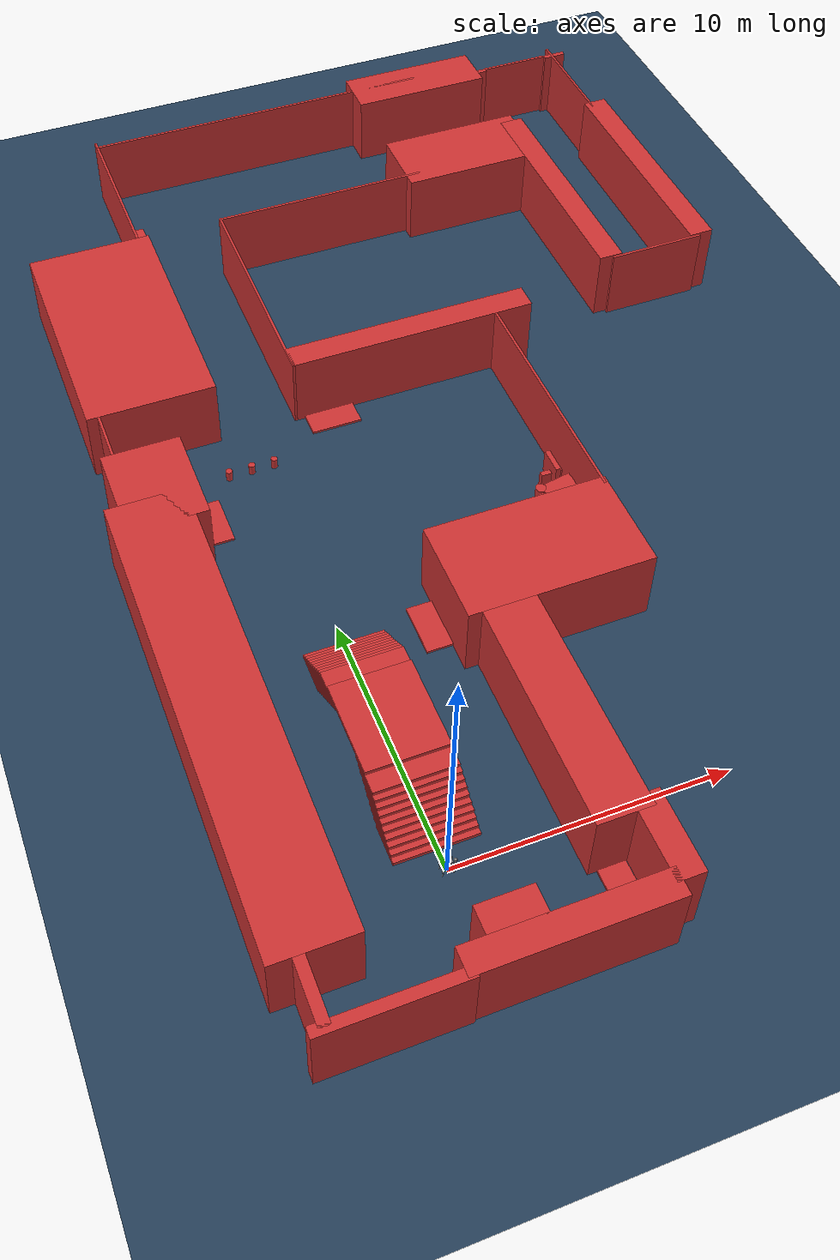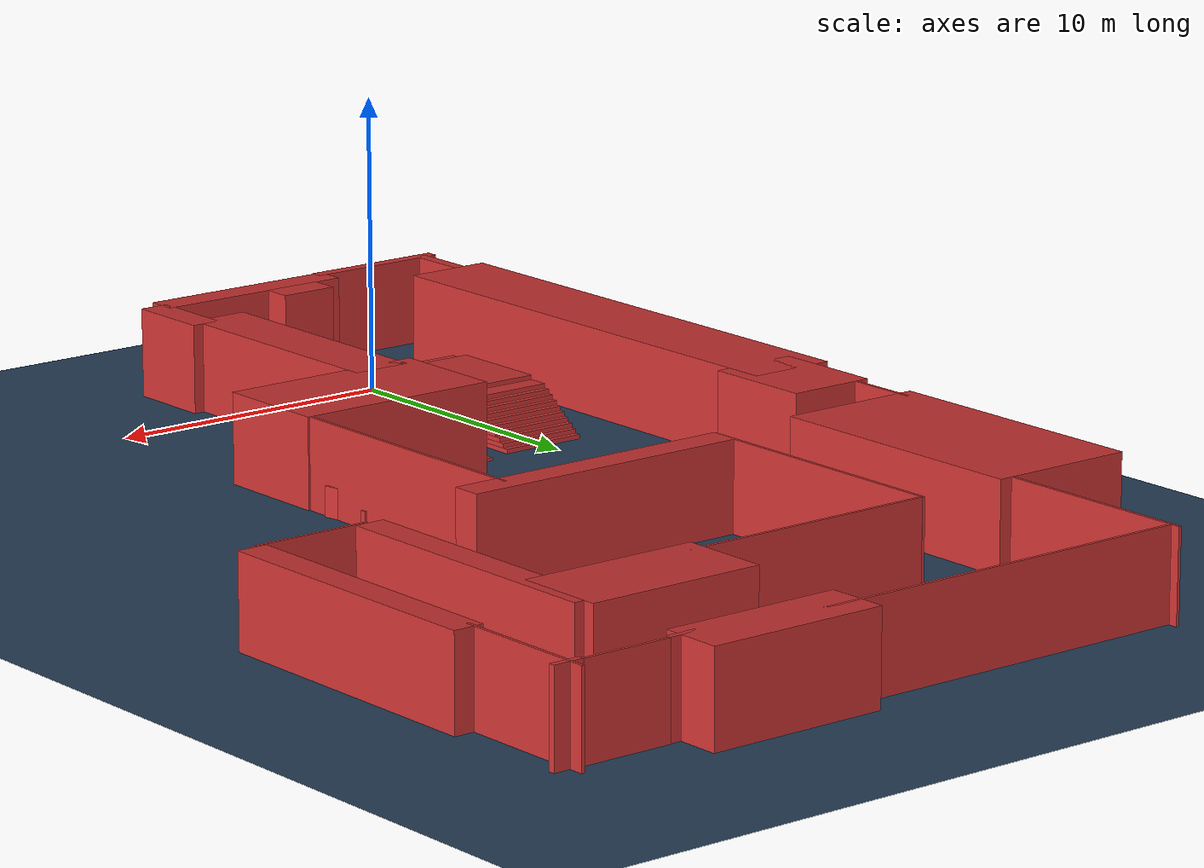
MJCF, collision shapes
<mujoco model="go2 scene">
  <include file="go2.xml" />

  <statistic center="0 0 0.1" extent="0.8" />

  <visual>
    <headlight diffuse="0.6 0.6 0.6" ambient="0.3 0.3 0.3" specular="0 0 0" />
    <rgba haze="0.15 0.25 0.35 1" />
    <global azimuth="-130" elevation="-20" />
    <map znear="0.01" zfar="100"/>
  </visual>

  <asset>
    <texture type="skybox" builtin="gradient" rgb1="0.3 0.5 0.7" rgb2="0 0 0" width="512" height="3072" />
    <texture type="2d" name="groundplane" builtin="checker" mark="edge" rgb1="0.2 0.3 0.4" rgb2="0.1 0.2 0.3" markrgb="0.8 0.8 0.8" width="300" height="300" />
    <material name="groundplane" texture="groundplane" texuniform="true" texrepeat="5 5" reflectance="0.2" />
    <material name="platform" rgba="0.75294 0.75294 0.75294 1" specular="0.3" shininess="0.5" />
  </asset>
  <worldbody>
    <light pos="0 0 1.5" dir="0 0 -1" directional="true" />
    <geom name="floor" size="0 0 0.01" type="plane" material="groundplane" />
    <geom name="box_OBS1" pos="0.0 1.5 0.05" type="box" size="1.5 0.75 0.075" quat="1.0 0.0 0.0 0.0"  rgba="0.8 0.2 0.2 1"/>
    <geom name="box_OBS2" pos="0.0 1.7 0.2" type="box" size="1.5 0.75 0.075" quat="1.0 0.0 0.0 0.0"  rgba="0.8 0.2 0.2 1"/>
    <geom name="box_OBS3" pos="0.0 1.9 0.35" type="box" size="1.5 0.75 0.075" quat="1.0 0.0 0.0 0.0"  rgba="0.8 0.2 0.2 1"/>
    <geom name="box_OBS4" pos="0.0 2.1 0.5" type="box" size="1.5 0.75 0.075" quat="1.0 0.0 0.0 0.0"  rgba="0.8 0.2 0.2 1"/>
    <geom name="box_OBS5" pos="0.0 2.3 0.65" type="box" size="1.5 0.75 0.075" quat="1.0 0.0 0.0 0.0"  rgba="0.8 0.2 0.2 1"/>
    <geom name="box_OBS6" pos="0.0 2.5 0.8" type="box" size="1.5 0.75 0.075" quat="1.0 0.0 0.0 0.0"  rgba="0.8 0.2 0.2 1"/>
    <geom name="box_OBS7" pos="0.0 2.7 0.95" type="box" size="1.5 0.75 0.075" quat="1.0 0.0 0.0 0.0"  rgba="0.8 0.2 0.2 1"/>
    <geom name="box_OBS8" pos="0.0 2.9 1.1" type="box" size="1.5 0.75 0.075" quat="1.0 0.0 0.0 0.0"  rgba="0.8 0.2 0.2 1"/>
    <geom name="box_OBS9" pos="0.0 3.1 1.25" type="box" size="1.5 0.75 0.075" quat="1.0 0.0 0.0 0.0"  rgba="0.8 0.2 0.2 1"/>
    <geom name="box_OBS10" pos="0.0 3.3 1.4" type="box" size="1.5 0.75 0.075" quat="1.0 0.0 0.0 0.0"  rgba="0.8 0.2 0.2 1"/>
    <geom name="box2_OBS1" pos="0.0 8.5 0.05" type="box" size="1.5 0.75 0.075" quat="1.0 0.0 0.0 0.0"  rgba="0.8 0.2 0.2 1"/>
    <geom name="box2_OBS2" pos="0.0 8.3 0.2" type="box" size="1.5 0.75 0.075" quat="1.0 0.0 0.0 0.0"  rgba="0.8 0.2 0.2 1"/>
    <geom name="box2_OBS3" pos="0.0 8.1 0.35" type="box" size="1.5 0.75 0.075" quat="1.0 0.0 0.0 0.0"  rgba="0.8 0.2 0.2 1"/>
    <geom name="box2_OBS4" pos="0.0 7.9 0.5" type="box" size="1.5 0.75 0.075" quat="1.0 0.0 0.0 0.0"  rgba="0.8 0.2 0.2 1"/>
    <geom name="box2_OBS5" pos="0.0 7.7 0.65" type="box" size="1.5 0.75 0.075" quat="1.0 0.0 0.0 0.0"  rgba="0.8 0.2 0.2 1"/>
    <geom name="box2_OBS6" pos="0.0 7.5 0.8" type="box" size="1.5 0.75 0.075" quat="1.0 0.0 0.0 0.0"  rgba="0.8 0.2 0.2 1"/>
    <geom name="box2_OBS7" pos="0.0 7.3 0.95" type="box" size="1.5 0.75 0.075" quat="1.0 0.0 0.0 0.0"  rgba="0.8 0.2 0.2 1"/>
    <geom name="box2_OBS8" pos="0.0 7.1 1.1" type="box" size="1.5 0.75 0.075" quat="1.0 0.0 0.0 0.0"  rgba="0.8 0.2 0.2 1"/>
    <geom name="box2_OBS9" pos="0.0 6.9 1.25" type="box" size="1.5 0.75 0.075" quat="1.0 0.0 0.0 0.0" rgba="0.8 0.2 0.2 1" />
    <geom name="box2_OBS10" pos="0.0 6.7 1.4" type="box" size="1.5 0.75 0.075" quat="1.0 0.0 0.0 0.0"  rgba="0.8 0.2 0.2 1"/>
    <geom name="box2_OBS11" pos="0.0 5.0 1.55" type="box" size="1.5 1.75 0.075" quat="1.0 0.0 0.0 0.0"  rgba="0.8 0.2 0.2 1"/>
    <geom name="Box0" type="box" size="2.5 0.2 1.5" pos="-3.6 -4.58 1.5" euler="0.0 0.0 0.0" rgba="0.8 0.2 0.2 1"/>
    <geom name="Box1" type="box" size="3.5 0.5 1.5" pos="2.09 -4.21 1.5" euler="0.0 0.0 0.0" rgba="0.8 0.2 0.2 1"/>
    <geom name="Box2" type="box" size="1.5 0.5 1.5" pos="5.89 -2.71 1.5" euler="0.0 0.0 -1.570796" rgba="0.8 0.2 0.2 1"/>
    <geom name="Box3" type="box" size="4.5 1.0 1.5" pos="5.02 2.79 1.5" euler="0.0 0.0 -1.570796" rgba="0.8 0.2 0.2 1"/>
    <geom name="Box4" type="box" size="2.0 3.5 1.5" pos="7.02 8.79 1.5" euler="0.0 0.0 -1.570796" rgba="0.8 0.2 0.2 1"/>
    <geom name="Box5" type="box" size="5.0 0.05 1.5" pos="10.41 15.49 1.5" euler="0.0 0.0 -1.570796" rgba="0.8 0.2 0.2 1"/>
    <geom name="Box6" type="box" size="5.0 0.5 1.5" pos="6.96 20.6 1.5" euler="0.0 0.0 -3.141593" rgba="0.8 0.2 0.2 1"/>
    <geom name="Box7" type="box" size="1.5 0.2 1.5" pos="-5.6 -3.08 1.5" euler="0.0 0.0 1.570796" rgba="0.8 0.2 0.2 1"/>
    <geom name="Box8" type="box" size="9.0 1.5 1.5" pos="-5.1 6.61 1.5" euler="0.0 0.0 1.570796" rgba="0.8 0.2 0.2 1"/>
    <geom name="Box9" type="box" size="1.9 1.5 1.5" pos="-4.6 16.19 1.5" euler="0.0 0.0 1.570796" rgba="0.8 0.2 0.2 1"/>
    <geom name="Box10" type="box" size="4.75 2.5 1.5" pos="-3.6 24.85 1.5" euler="0.0 0.0 1.570796" rgba="0.8 0.2 0.2 1"/>
    <geom name="Box11" type="box" size="3.5 0.05 1.5" pos="-1.58 33.09 1.5" euler="0.0 0.0 1.570796" rgba="0.8 0.2 0.2 1"/>
    <geom name="Box12" type="box" size="4.75 0.05 1.5" pos="1.99 24.85 1.5" euler="0.0 0.0 1.570796" rgba="0.8 0.2 0.2 1"/>
    <geom name="Box13" type="box" size="7.5 0.05 1.5" pos="5.91 36.24 1.5" euler="0.0 0.0 3.141593" rgba="0.8 0.2 0.2 1"/>
    <geom name="Box14" type="box" size="3.0 1.0 1.5" pos="13.37 36.1 1.5" euler="0.0 0.0 3.141593" rgba="0.8 0.2 0.2 1"/>
    <geom name="Box15" type="box" size="3.0 1.5 1.5" pos="13.37 30.46 1.5" euler="0.0 0.0 3.141593" rgba="0.8 0.2 0.2 1"/>
    <geom name="Box16" type="box" size="4.5 0.05 1.5" pos="6.48 29.54 1.5" euler="0.0 0.0 3.141593" rgba="0.8 0.2 0.2 1"/>
    <geom name="Box17" type="box" size="1.5 0.05 1.5" pos="18.26 35.71 1.5" euler="0.0 0.0 3.141593" rgba="0.8 0.2 0.2 1"/>
    <geom name="Box18" type="box" size="0.5 0.1 1.5" pos="16.26 35.63 1.5" euler="0.0 0.0 3.141593" rgba="0.8 0.2 0.2 1"/>
    <geom name="Box19" type="box" size="0.5 0.1 1.5" pos="20.26 35.63 1.5" euler="0.0 0.0 3.141593" rgba="0.8 0.2 0.2 1"/>
    <geom name="Box20" type="box" size="2.5 0.05 1.5" pos="20.16 33.71 1.5" euler="0.0 0.0 -1.570796" rgba="0.8 0.2 0.2 1"/>
    <geom name="Box21" type="box" size="5.0 0.5 1.5" pos="20.38 26.58 1.5" euler="0.0 0.0 -1.570796" rgba="0.8 0.2 0.2 1"/>
    <geom name="Box22" type="box" size="5.0 0.5 1.5" pos="16.22 26.58 1.5" euler="0.0 0.0 -1.570796" rgba="0.8 0.2 0.2 1"/>
    <geom name="Box23" type="box" size="2.0 0.05 1.5" pos="18.26 21.48 1.5" euler="0.0 0.0 -3.141593" rgba="0.8 0.2 0.2 1"/>
    <geom name="Box24" type="box" size="1.0 0.5 1.5" pos="0.55 -3.24 1.5" euler="0.0 0.0 0.0" rgba="0.8 0.2 0.2 1"/>
    <geom name="Box25" type="box" size="1.0 0.5 0.05" pos="4.83 -2.74 0.09" euler="0.0 0.0 -1.570796" rgba="0.8 0.2 0.2 1"/>
    <geom name="Box26" type="box" size="1.0 0.5 0.05" pos="-2.63 16.08 0.1" euler="0.0 0.0 -1.570796" rgba="0.8 0.2 0.2 1"/>
    <geom name="Box27" type="box" size="1.0 0.5 0.05" pos="3.35 19.62 0.1" euler="0.0 0.0 0.0" rgba="0.8 0.2 0.2 1"/>
    <geom name="Box28" type="box" size="1.0 0.5 0.05" pos="-1.05 32.59 0.1" euler="0.0 0.0 -1.570796" rgba="0.8 0.2 0.2 1"/>
    <geom name="Box29" type="box" size="0.1 0.5 0.5" pos="6.82 11.09 0.5" euler="0.0 0.0 -1.570796" rgba="0.8 0.2 0.2 1"/>
    <geom name="Box30" type="box" size="0.5 0.65 0.5" pos="8.24 11.3 0.5" euler="0.0 0.0 -1.570796" rgba="0.8 0.2 0.2 1"/>
    <geom name="Box31" type="box" size="0.65 0.65 0.5" pos="9.8 12.2 0.5" euler="0.0 0.0 1.745329" rgba="0.8 0.2 0.2 1"/>
    <geom name="Box32" type="box" size="0.1 0.5 0.5" pos="10.02 13.59 0.1" euler="-1.570796 1.570796 3.141593" rgba="0.8 0.2 0.2 1"/>
    <geom name="Box33" type="box" size="0.1 0.5 0.5" pos="10.02 13.69 0.6" euler="-1.570796 0.0 3.141593" rgba="0.8 0.2 0.2 1"/>
    <geom name="Cylinder34"  type="cylinder" size="0.2 0.5" pos="8.95 12.2 0.5" rgba="0.8 0.2 0.2 1"/>
    <geom name="Cylinder35"  type="cylinder" size="0.2 0.5" pos="9.05 12.65 0.5" rgba="0.8 0.2 0.2 1"/>
    <geom name="Box36" type="box" size="1.5 0.05 1.5" pos="-5.63 19.05 1.5" euler="0.0 0.0 1.570796" rgba="0.8 0.2 0.2 1"/>
    <geom name="Cylinder37"  type="cylinder" size="0.125 0.22" pos="0.41 18.09 0.22" rgba="0.8 0.2 0.2 1"/>
    <geom name="Cylinder38"  type="cylinder" size="0.125 0.22" pos="-0.49 18.09 0.22" rgba="0.8 0.2 0.2 1"/>
    <geom name="Cylinder39"  type="cylinder" size="0.125 0.22" pos="-1.39 18.09 0.22" rgba="0.8 0.2 0.2 1"/>
    <geom name="Box40" type="box" size="1.0 0.5 0.05" pos="3.04 8.82 0.1" euler="0.0 0.0 -1.570796" rgba="0.8 0.2 0.2 1"/>
  </worldbody>
</mujoco>

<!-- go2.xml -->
<mujoco model="go2">
  <compiler angle="radian" meshdir="assets" autolimits="true" />

  <option cone="elliptic" impratio="100" />

  <default>
    <default class="go2">
      <geom friction="0.4" margin="0.001" condim="1"/>
      <joint axis="0 1 0" damping="0.1" armature="0.01" frictionloss="0.2"/>
      <motor ctrlrange="-23.7 23.7"/>
      <default class="abduction">
        <joint axis="1 0 0" range="-1.0472 1.0472"/>
      </default>
      <default class="hip">
        <default class="front_hip">
          <joint range="-1.5708 3.4907"/>
        </default>
        <default class="back_hip">
          <joint range="-0.5236 4.5379"/>
        </default>
      </default>
      <default class="knee">
        <joint range="-2.7227 -0.83776"/>
        <motor ctrlrange="-45.43 45.43"/>
      </default>
      <default class="visual">
        <geom type="mesh" contype="0" conaffinity="0" group="2"/>
      </default>
      <default class="collision">
        <geom group="3"/>
        <default class="foot">
          <geom size="0.022" pos="-0.002 0 -0.213" priority="1" condim="6"
            friction="0.4 0.02 0.01"/>
        </default>
      </default>
    </default>
  </default>

  <asset>
    <material name="metal" rgba=".9 .95 .95 1" />
    <material name="black" rgba="0 0 0 1" />
    <material name="white" rgba="1 1 1 1" />
    <material name="gray" rgba="0.671705 0.692426 0.774270 1" />

    <mesh file="base_0.obj" />
    <mesh file="base_1.obj" />
    <mesh file="base_2.obj" />
    <mesh file="base_3.obj" />
    <mesh file="base_4.obj" />
    <mesh file="hip_0.obj" />
    <mesh file="hip_1.obj" />
    <mesh file="thigh_0.obj" />
    <mesh file="thigh_1.obj" />
    <mesh file="thigh_mirror_0.obj" />
    <mesh file="thigh_mirror_1.obj" />
    <mesh file="calf_0.obj" />
    <mesh file="calf_1.obj" />
    <mesh file="calf_mirror_0.obj" />
    <mesh file="calf_mirror_1.obj" />
    <mesh file="foot.obj" />
  </asset>

  <worldbody>
    <body name="base_link" pos="0 0 0.445" childclass="go2">
      <inertial pos="0.021112 0 -0.005366" quat="-0.000543471 0.713435 -0.00173769 0.700719"
        mass="6.921"
        diaginertia="0.107027 0.0980771 0.0244531" />
      <freejoint />
      <geom mesh="base_0" material="black" class="visual" />
      <geom mesh="base_1" material="black" class="visual" />
      <geom mesh="base_2" material="black" class="visual" />
      <geom mesh="base_3" material="white" class="visual" />
      <geom mesh="base_4" material="gray" class="visual" />
      <geom size="0.1881 0.04675 0.057" type="box" class="collision" />
      <geom size="0.05 0.045" pos="0.285 0 0.01" type="cylinder" class="collision" />
      <geom size="0.047" pos="0.293 0 -0.06" class="collision" />
      <site name="imu" pos="-0.02557 0 0.04232" />

      <body name="FL_hip" pos="0.1934 0.0465 0">
        <inertial pos="-0.0054 0.00194 -0.000105" quat="0.497014 0.499245 0.505462 0.498237"
          mass="0.678"
          diaginertia="0.00088403 0.000596003 0.000479967" />
        <joint name="FL_hip_joint" class="abduction" />
        <geom mesh="hip_0" material="metal" class="visual" />
        <geom mesh="hip_1" material="gray" class="visual" />
        <geom size="0.046 0.02" pos="0 0.08 0" quat="1 1 0 0" type="cylinder" class="collision" />
        <body name="FL_thigh" pos="0 0.0955 0">
          <inertial pos="-0.00374 -0.0223 -0.0327" quat="0.829533 0.0847635 -0.0200632 0.551623"
            mass="1.152"
            diaginertia="0.00594973 0.00584149 0.000878787" />
          <joint name="FL_thigh_joint" class="front_hip" />
          <geom mesh="thigh_0" material="metal" class="visual" />
          <geom mesh="thigh_1" material="gray" class="visual" />
          <geom size="0.1065 0.01225 0.017" pos="0 0 -0.1065" quat="0.707107 0 0.707107 0"
            type="box" class="collision" />
          <body name="FL_calf" pos="0 0 -0.213">
            <inertial pos="0.00629595 -0.000622121 -0.141417"
              quat="0.710672 0.00154099 -0.00450087 0.703508"
              mass="0.241352" diaginertia="0.0014901 0.00146356 5.31397e-05" />
            <joint name="FL_calf_joint" class="knee" />
            <geom mesh="calf_0" material="gray" class="visual" />
            <geom mesh="calf_1" material="black" class="visual" />
            <geom size="0.012 0.06" pos="0.008 0 -0.06" quat="0.994493 0 -0.104807 0"
              type="cylinder" class="collision" />
            <geom size="0.011 0.0325" pos="0.02 0 -0.148" quat="0.999688 0 0.0249974 0"
              type="cylinder" class="collision" />
            <geom pos="0 0 -0.213" mesh="foot" class="visual" material="black" />
            <geom name="FL" class="foot" />
            <body name="FL_foot" pos="0 0 -0.213" />
          </body>
        </body>
      </body>
      <body name="FR_hip" pos="0.1934 -0.0465 0">
        <inertial pos="-0.0054 -0.00194 -0.000105" quat="0.498237 0.505462 0.499245 0.497014"
          mass="0.678"
          diaginertia="0.00088403 0.000596003 0.000479967" />
        <joint name="FR_hip_joint" class="abduction" />
        <geom mesh="hip_0" material="metal" class="visual" quat="4.63268e-05 1 0 0" />
        <geom mesh="hip_1" material="gray" class="visual" quat="4.63268e-05 1 0 0" />
        <geom size="0.046 0.02" pos="0 -0.08 0" quat="0.707107 0.707107 0 0" type="cylinder"
          class="collision" />
        <body name="FR_thigh" pos="0 -0.0955 0">
          <inertial pos="-0.00374 0.0223 -0.0327" quat="0.551623 -0.0200632 0.0847635 0.829533"
            mass="1.152"
            diaginertia="0.00594973 0.00584149 0.000878787" />
          <joint name="FR_thigh_joint" class="front_hip" />
          <geom mesh="thigh_mirror_0" material="metal" class="visual" />
          <geom mesh="thigh_mirror_1" material="gray" class="visual" />
          <geom size="0.1065 0.01225 0.017" pos="0 0 -0.1065" quat="0.707107 0 0.707107 0"
            type="box" class="collision" />
          <body name="FR_calf" pos="0 0 -0.213">
            <inertial pos="0.00629595 0.000622121 -0.141417"
              quat="0.703508 -0.00450087 0.00154099 0.710672"
              mass="0.241352" diaginertia="0.0014901 0.00146356 5.31397e-05" />
            <joint name="FR_calf_joint" class="knee" />
            <geom mesh="calf_mirror_0" material="gray" class="visual" />
            <geom mesh="calf_mirror_1" material="black" class="visual" />
            <geom size="0.013 0.06" pos="0.01 0 -0.06" quat="0.995004 0 -0.0998334 0"
              type="cylinder" class="collision" />
            <geom size="0.011 0.0325" pos="0.02 0 -0.148" quat="0.999688 0 0.0249974 0"
              type="cylinder" class="collision" />
            <geom pos="0 0 -0.213" mesh="foot" class="visual" material="black" />
            <geom name="FR" class="foot" />
            <body name="FR_foot" pos="0 0 -0.213" />
          </body>
        </body>
      </body>
      <body name="RL_hip" pos="-0.1934 0.0465 0">
        <inertial pos="0.0054 0.00194 -0.000105" quat="0.505462 0.498237 0.497014 0.499245"
          mass="0.678"
          diaginertia="0.00088403 0.000596003 0.000479967" />
        <joint name="RL_hip_joint" class="abduction" />
        <geom mesh="hip_0" material="metal" class="visual" quat="4.63268e-05 0 1 0" />
        <geom mesh="hip_1" material="gray" class="visual" quat="4.63268e-05 0 1 0" />
        <geom size="0.046 0.02" pos="0 0.08 0" quat="0.707107 0.707107 0 0" type="cylinder"
          class="collision" />
        <body name="RL_thigh" pos="0 0.0955 0">
          <inertial pos="-0.00374 -0.0223 -0.0327" quat="0.829533 0.0847635 -0.0200632 0.551623"
            mass="1.152"
            diaginertia="0.00594973 0.00584149 0.000878787" />
          <joint name="RL_thigh_joint" class="back_hip" />
          <geom mesh="thigh_0" material="metal" class="visual" />
          <geom mesh="thigh_1" material="gray" class="visual" />
          <geom size="0.1065 0.01225 0.017" pos="0 0 -0.1065" quat="0.707107 0 0.707107 0"
            type="box" class="collision" />
          <body name="RL_calf" pos="0 0 -0.213">
            <inertial pos="0.00629595 -0.000622121 -0.141417"
              quat="0.710672 0.00154099 -0.00450087 0.703508"
              mass="0.241352" diaginertia="0.0014901 0.00146356 5.31397e-05" />
            <joint name="RL_calf_joint" class="knee" />
            <geom mesh="calf_0" material="gray" class="visual" />
            <geom mesh="calf_1" material="black" class="visual" />
            <geom size="0.013 0.06" pos="0.01 0 -0.06" quat="0.995004 0 -0.0998334 0"
              type="cylinder" class="collision" />
            <geom size="0.011 0.0325" pos="0.02 0 -0.148" quat="0.999688 0 0.0249974 0"
              type="cylinder" class="collision" />
            <geom pos="0 0 -0.213" mesh="foot" class="visual" material="black" />
            <geom name="RL" class="foot" />
            <body name="RL_foot" pos="0 0 -0.213" />
          </body>
        </body>
      </body>
      <body name="RR_hip" pos="-0.1934 -0.0465 0">
        <inertial pos="0.0054 -0.00194 -0.000105" quat="0.499245 0.497014 0.498237 0.505462"
          mass="0.678"
          diaginertia="0.00088403 0.000596003 0.000479967" />
        <joint name="RR_hip_joint" class="abduction" />
        <geom mesh="hip_0" material="metal" class="visual"
          quat="2.14617e-09 4.63268e-05 4.63268e-05 -1" />
        <geom mesh="hip_1" material="gray" class="visual"
          quat="2.14617e-09 4.63268e-05 4.63268e-05 -1" />
        <geom size="0.046 0.02" pos="0 -0.08 0" quat="0.707107 0.707107 0 0" type="cylinder"
          class="collision" />
        <body name="RR_thigh" pos="0 -0.0955 0">
          <inertial pos="-0.00374 0.0223 -0.0327" quat="0.551623 -0.0200632 0.0847635 0.829533"
            mass="1.152"
            diaginertia="0.00594973 0.00584149 0.000878787" />
          <joint name="RR_thigh_joint" class="back_hip" />
          <geom mesh="thigh_mirror_0" material="metal" class="visual" />
          <geom mesh="thigh_mirror_1" material="gray" class="visual" />
          <geom size="0.1065 0.01225 0.017" pos="0 0 -0.1065" quat="0.707107 0 0.707107 0"
            type="box" class="collision" />
          <body name="RR_calf" pos="0 0 -0.213">
            <inertial pos="0.00629595 0.000622121 -0.141417"
              quat="0.703508 -0.00450087 0.00154099 0.710672"
              mass="0.241352" diaginertia="0.0014901 0.00146356 5.31397e-05" />
            <joint name="RR_calf_joint" class="knee" />
            <geom mesh="calf_mirror_0" material="gray" class="visual" />
            <geom mesh="calf_mirror_1" material="black" class="visual" />
            <geom size="0.013 0.06" pos="0.01 0 -0.06" quat="0.995004 0 -0.0998334 0"
              type="cylinder" class="collision" />
            <geom size="0.011 0.0325" pos="0.02 0 -0.148" quat="0.999688 0 0.0249974 0"
              type="cylinder" class="collision" />
            <geom pos="0 0 -0.213" mesh="foot" class="visual" material="black" />
            <geom name="RR" class="foot" />
            <body name="RR_foot" pos="0 0 -0.213" />
          </body>
        </body>
      </body>
    </body>
  </worldbody>

  <actuator>
    <motor class="abduction" name="FR_hip" joint="FR_hip_joint" />
    <motor class="hip" name="FR_thigh" joint="FR_thigh_joint" />
    <motor class="knee" name="FR_calf" joint="FR_calf_joint" />
    <motor class="abduction" name="FL_hip" joint="FL_hip_joint" />
    <motor class="hip" name="FL_thigh" joint="FL_thigh_joint" />
    <motor class="knee" name="FL_calf" joint="FL_calf_joint" />
    <motor class="abduction" name="RR_hip" joint="RR_hip_joint" />
    <motor class="hip" name="RR_thigh" joint="RR_thigh_joint" />
    <motor class="knee" name="RR_calf" joint="RR_calf_joint" />
    <motor class="abduction" name="RL_hip" joint="RL_hip_joint" />
    <motor class="hip" name="RL_thigh" joint="RL_thigh_joint" />
    <motor class="knee" name="RL_calf" joint="RL_calf_joint" />
  </actuator>

  <sensor>
    <jointpos name="FR_hip_pos" joint="FR_hip_joint" />
    <jointpos name="FR_thigh_pos" joint="FR_thigh_joint" />
    <jointpos name="FR_calf_pos" joint="FR_calf_joint" />
    <jointpos name="FL_hip_pos" joint="FL_hip_joint" />
    <jointpos name="FL_thigh_pos" joint="FL_thigh_joint" />
    <jointpos name="FL_calf_pos" joint="FL_calf_joint" />
    <jointpos name="RR_hip_pos" joint="RR_hip_joint" />
    <jointpos name="RR_thigh_pos" joint="RR_thigh_joint" />
    <jointpos name="RR_calf_pos" joint="RR_calf_joint" />
    <jointpos name="RL_hip_pos" joint="RL_hip_joint" />
    <jointpos name="RL_thigh_pos" joint="RL_thigh_joint" />
    <jointpos name="RL_calf_pos" joint="RL_calf_joint" />

    <jointvel name="FR_hip_vel" joint="FR_hip_joint" />
    <jointvel name="FR_thigh_vel" joint="FR_thigh_joint" />
    <jointvel name="FR_calf_vel" joint="FR_calf_joint" />
    <jointvel name="FL_hip_vel" joint="FL_hip_joint" />
    <jointvel name="FL_thigh_vel" joint="FL_thigh_joint" />
    <jointvel name="FL_calf_vel" joint="FL_calf_joint" />
    <jointvel name="RR_hip_vel" joint="RR_hip_joint" />
    <jointvel name="RR_thigh_vel" joint="RR_thigh_joint" />
    <jointvel name="RR_calf_vel" joint="RR_calf_joint" />
    <jointvel name="RL_hip_vel" joint="RL_hip_joint" />
    <jointvel name="RL_thigh_vel" joint="RL_thigh_joint" />
    <jointvel name="RL_calf_vel" joint="RL_calf_joint" />

    <jointactuatorfrc name="FR_hip_torque" joint="FR_hip_joint" noise="0.01" />
    <jointactuatorfrc name="FR_thigh_torque" joint="FR_thigh_joint" noise="0.01" />
    <jointactuatorfrc name="FR_calf_torque" joint="FR_calf_joint" noise="0.01" />
    <jointactuatorfrc name="FL_hip_torque" joint="FL_hip_joint" noise="0.01" />
    <jointactuatorfrc name="FL_thigh_torque" joint="FL_thigh_joint" noise="0.01" />
    <jointactuatorfrc name="FL_calf_torque" joint="FL_calf_joint" noise="0.01" />
    <jointactuatorfrc name="RR_hip_torque" joint="RR_hip_joint" noise="0.01" />
    <jointactuatorfrc name="RR_thigh_torque" joint="RR_thigh_joint" noise="0.01" />
    <jointactuatorfrc name="RR_calf_torque" joint="RR_calf_joint" noise="0.01" />
    <jointactuatorfrc name="RL_hip_torque" joint="RL_hip_joint" noise="0.01" />
    <jointactuatorfrc name="RL_thigh_torque" joint="RL_thigh_joint" noise="0.01" />
    <jointactuatorfrc name="RL_calf_torque" joint="RL_calf_joint" noise="0.01" />

    <framequat name="imu_quat" objtype="site" objname="imu" />
    <gyro name="imu_gyro" site="imu" />
    <accelerometer name="imu_acc" site="imu" />

    <framepos name="frame_pos" objtype="site" objname="imu" />
    <framelinvel name="frame_vel" objtype="site" objname="imu" />
  </sensor>

  <keyframe>
    <key name="home" qpos="0 0 0.27 1 0 0 0 0 0.9 -1.8 0 0.9 -1.8 0 0.9 -1.8 0 0.9 -1.8"
      ctrl="0 0.9 -1.8 0 0.9 -1.8 0 0.9 -1.8 0 0.9 -1.8" />
  </keyframe>
</mujoco>
